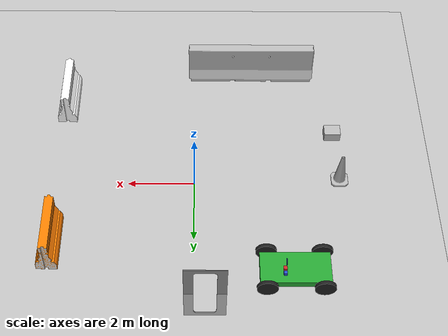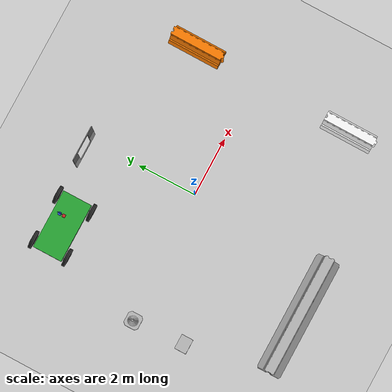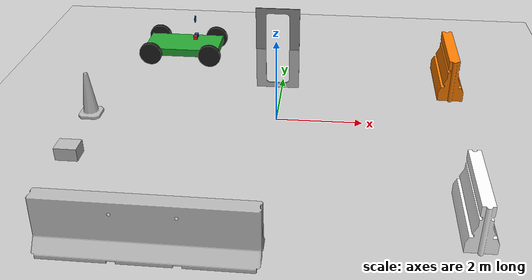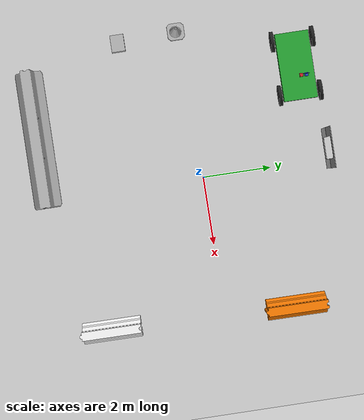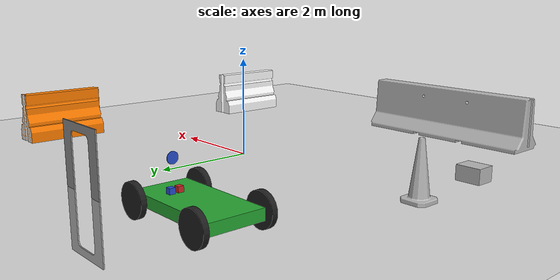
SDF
<sdf version="1.6">
 <world name="default">
  <light name="sun" type="directional">
   <pose>0 0 15 0 -0 0</pose>
   <diffuse>0.8 0.8 0.8 1</diffuse>
   <specular>0.2 0.2 0.2 1</specular>
   <attenuation>
    <range>1000</range>
    <constant>0.9</constant>
    <linear>0.01</linear>
    <quadratic>0.001</quadratic>
   </attenuation>
   <direction>-0.5 0.1 -0.9</direction>
  </light>
  <model name="ground_plane">
   <static>1</static>
   <link name="link">
    <collision name="collision">
     <geometry><plane><normal>0 0 1</normal><size>100 100</size></plane></geometry>
     <surface><friction><ode><mu>100</mu><mu2>50</mu2></ode></friction></surface>
    </collision>
    <visual name="visual">
     <transparency>1</transparency>
     <cast_shadows>0</cast_shadows>
     <geometry><plane><normal>0 0 1</normal><size>100 100</size></plane></geometry>
     <material>
      <script><uri>file://media/materials/scripts/gazebo.material</uri><name>Gazebo/Grey</name></script>
     </material>
    </visual>
   </link>
  </model>
  <gravity>0 0 -9.8</gravity>
  <magnetic_field>6e-06 2.3e-05 -4.2e-05</magnetic_field>
  <atmosphere type="adiabatic"/>
  <physics name="default_physics" default="0" type="ode">
   <max_step_size>0.001</max_step_size>
   <real_time_factor>1</real_time_factor>
   <real_time_update_rate>1000</real_time_update_rate>
  </physics>
  <scene><ambient>0.4 0.4 0.4 1</ambient><background>0.7 0.7 0.7 1</background><shadows>1</shadows></scene>
  <spherical_coordinates>
   <surface_model>EARTH_WGS84</surface_model>
   <latitude_deg>0</latitude_deg>
   <longitude_deg>0</longitude_deg>
   <elevation>0</elevation>
   <heading_deg>0</heading_deg>
  </spherical_coordinates>
  <model name="car">
   <link name="chassis">
    <pose>0 0 0.3 0 -0 0</pose>
    <collision name="collision"><geometry><box><size>2 1 0.2</size></box></geometry></collision>
    <visual name="visual">
     <geometry><box><size>2 1 0.2</size></box></geometry>
     <material>
      <script><uri>file://media/materials/scripts/gazebo.material</uri><name>Gazebo/Green</name></script>
     </material>
    </visual>
    <inertial>
     <inertia><ixx>1</ixx><ixy>0</ixy><ixz>0</ixz><iyy>1</iyy><iyz>0</iyz><izz>1</izz></inertia>
     <mass>1</mass>
    </inertial>
   </link>
   <link name="front_left_wheel">
    <pose>0.8 0.6 0.3 -0 1.5707 1.5707</pose>
    <collision name="collision">
     <geometry><cylinder><radius>0.3</radius><length>0.1</length></cylinder></geometry>
    </collision>
    <visual name="visual">
     <geometry><cylinder><radius>0.3</radius><length>0.1</length></cylinder></geometry>
     <material>
      <script><uri>file://media/materials/scripts/gazebo.material</uri><name>Gazebo/Black</name></script>
     </material>
    </visual>
    <inertial>
     <inertia><ixx>1</ixx><ixy>0</ixy><ixz>0</ixz><iyy>1</iyy><iyz>0</iyz><izz>1</izz></inertia>
     <mass>1</mass>
    </inertial>
   </link>
   <link name="front_right_wheel">
    <pose>0.8 -0.6 0.3 -0 1.5707 1.5707</pose>
    <collision name="collision">
     <geometry><cylinder><radius>0.3</radius><length>0.1</length></cylinder></geometry>
    </collision>
    <visual name="visual">
     <geometry><cylinder><radius>0.3</radius><length>0.1</length></cylinder></geometry>
     <material>
      <script><uri>file://media/materials/scripts/gazebo.material</uri><name>Gazebo/Black</name></script>
     </material>
    </visual>
    <inertial>
     <inertia><ixx>1</ixx><ixy>0</ixy><ixz>0</ixz><iyy>1</iyy><iyz>0</iyz><izz>1</izz></inertia>
     <mass>1</mass>
    </inertial>
   </link>
   <link name="back_right_wheel">
    <pose>-0.8 -0.6 0.3 -0 1.5707 1.5707</pose>
    <collision name="collision">
     <geometry><cylinder><radius>0.3</radius><length>0.1</length></cylinder></geometry>
    </collision>
    <visual name="visual">
     <geometry><cylinder><radius>0.3</radius><length>0.1</length></cylinder></geometry>
     <material>
      <script><uri>file://media/materials/scripts/gazebo.material</uri><name>Gazebo/Black</name></script>
     </material>
    </visual>
    <inertial>
     <inertia><ixx>1</ixx><ixy>0</ixy><ixz>0</ixz><iyy>1</iyy><iyz>0</iyz><izz>1</izz></inertia>
     <mass>1</mass>
    </inertial>
   </link>
   <link name="back_left_wheel">
    <pose>-0.8 0.6 0.3 -0 1.5707 1.5707</pose>
    <collision name="collision">
     <geometry><cylinder><radius>0.3</radius><length>0.1</length></cylinder></geometry>
    </collision>
    <visual name="visual">
     <geometry><cylinder><radius>0.3</radius><length>0.1</length></cylinder></geometry>
     <material>
      <script><uri>file://media/materials/scripts/gazebo.material</uri><name>Gazebo/Black</name></script>
     </material>
    </visual>
    <inertial>
     <inertia><ixx>1</ixx><ixy>0</ixy><ixz>0</ixz><iyy>1</iyy><iyz>0</iyz><izz>1</izz></inertia>
     <mass>1</mass>
    </inertial>
   </link>
   <link name="gas_pedal">
    <pose>0.3 0.1 0.5 0 -0 0</pose>
    <collision name="collision"><geometry><box><size>0.1 0.1 0.1</size></box></geometry></collision>
    <visual name="visual">
     <geometry><box><size>0.1 0.1 0.1</size></box></geometry>
     <material>
      <script><uri>file://media/materials/scripts/gazebo.material</uri><name>Gazebo/Red</name></script>
     </material>
    </visual>
    <inertial>
     <inertia><ixx>1</ixx><ixy>0</ixy><ixz>0</ixz><iyy>1</iyy><iyz>0</iyz><izz>1</izz></inertia>
     <mass>1</mass>
    </inertial>
   </link>
   <link name="brake_pedal">
    <pose>0.3 0.25 0.5 0 -0 0</pose>
    <collision name="collision"><geometry><box><size>0.1 0.1 0.1</size></box></geometry></collision>
    <visual name="visual">
     <geometry><box><size>0.1 0.1 0.1</size></box></geometry>
     <material>
      <script><uri>file://media/materials/scripts/gazebo.material</uri><name>Gazebo/Blue</name></script>
     </material>
    </visual>
    <inertial>
     <inertia><ixx>1</ixx><ixy>0</ixy><ixz>0</ixz><iyy>1</iyy><iyz>0</iyz><izz>1</izz></inertia>
     <mass>1</mass>
    </inertial>
   </link>
   <link name="steering_wheel">
    <pose>0.3 0.2 1 0 1.5707 0</pose>
    <collision name="collision">
     <geometry><cylinder><radius>0.1</radius><length>0.01</length></cylinder></geometry>
    </collision>
    <visual name="visual">
     <geometry><cylinder><radius>0.1</radius><length>0.01</length></cylinder></geometry>
     <material>
      <script><uri>file://media/materials/scripts/gazebo.material</uri><name>Gazebo/Blue</name></script>
     </material>
    </visual>
    <inertial>
     <inertia><ixx>1</ixx><ixy>0</ixy><ixz>0</ixz><iyy>1</iyy><iyz>0</iyz><izz>1</izz></inertia>
     <mass>1</mass>
    </inertial>
   </link>
   <joint name="gas_joint" type="prismatic">
    <parent>chassis</parent>
    <child>gas_pedal</child>
    <axis>
     <xyz>1 0 0</xyz>
     <limit><lower>0</lower><upper>0.2</upper></limit>
     <use_parent_model_frame>1</use_parent_model_frame>
     <dynamics><spring_reference>0</spring_reference><spring_stiffness>0</spring_stiffness></dynamics>
    </axis>
   </joint>
   <joint name="brake_joint" type="prismatic">
    <parent>chassis</parent>
    <child>brake_pedal</child>
    <axis>
     <xyz>1 0 0</xyz>
     <limit><lower>0</lower><upper>0.2</upper></limit>
     <use_parent_model_frame>1</use_parent_model_frame>
     <dynamics><spring_reference>0</spring_reference><spring_stiffness>0</spring_stiffness></dynamics>
    </axis>
   </joint>
   <joint name="steering_joint" type="revolute">
    <parent>chassis</parent>
    <child>steering_wheel</child>
    <axis>
     <xyz>1 0 0</xyz>
     <limit><lower>-7.853</lower><upper>7.853</upper></limit>
     <use_parent_model_frame>1</use_parent_model_frame>
     <dynamics><spring_reference>0</spring_reference><spring_stiffness>0</spring_stiffness></dynamics>
    </axis>
   </joint>
   <joint name="front_left_joint" type="revolute2">
    <parent>chassis</parent>
    <child>front_left_wheel</child>
    <axis>
     <xyz>0 0 1</xyz>
     <limit><lower>8.69312e-06</lower><upper>8.69312e-06</upper></limit>
     <use_parent_model_frame>1</use_parent_model_frame>
     <dynamics><spring_reference>0</spring_reference><spring_stiffness>0</spring_stiffness></dynamics>
    </axis>
    <axis2>
     <xyz>0 1 0</xyz>
     <use_parent_model_frame>1</use_parent_model_frame>
     <dynamics><spring_reference>0</spring_reference><spring_stiffness>0</spring_stiffness></dynamics>
    </axis2>
    <physics><ode><limit><cfm>0</cfm><erp>0.9</erp></limit></ode></physics>
   </joint>
   <joint name="front_right_joint" type="revolute2">
    <parent>chassis</parent>
    <child>front_right_wheel</child>
    <axis>
     <xyz>0 0 1</xyz>
     <limit><lower>8.69312e-06</lower><upper>8.69312e-06</upper></limit>
     <use_parent_model_frame>1</use_parent_model_frame>
     <dynamics><spring_reference>0</spring_reference><spring_stiffness>0</spring_stiffness></dynamics>
    </axis>
    <axis2>
     <xyz>0 1 0</xyz>
     <use_parent_model_frame>1</use_parent_model_frame>
     <dynamics><spring_reference>0</spring_reference><spring_stiffness>0</spring_stiffness></dynamics>
    </axis2>
    <physics><ode><limit><cfm>0</cfm><erp>0.9</erp></limit></ode></physics>
   </joint>
   <joint name="back_right_joint" type="revolute2">
    <parent>chassis</parent>
    <child>back_right_wheel</child>
    <axis>
     <xyz>0 0 1</xyz>
     <limit><lower>0</lower><upper>0</upper></limit>
     <use_parent_model_frame>1</use_parent_model_frame>
     <dynamics><spring_reference>0</spring_reference><spring_stiffness>0</spring_stiffness></dynamics>
    </axis>
    <axis2>
     <xyz>0 1 0</xyz>
     <use_parent_model_frame>1</use_parent_model_frame>
     <dynamics><spring_reference>0</spring_reference><spring_stiffness>0</spring_stiffness></dynamics>
    </axis2>
    <physics><ode><limit><cfm>0</cfm><erp>0.9</erp></limit></ode></physics>
   </joint>
   <joint name="back_left_joint" type="revolute2">
    <parent>chassis</parent>
    <child>back_left_wheel</child>
    <axis>
     <xyz>0 0 1</xyz>
     <limit><lower>0</lower><upper>0</upper></limit>
     <use_parent_model_frame>1</use_parent_model_frame>
     <dynamics><spring_reference>0</spring_reference><spring_stiffness>0</spring_stiffness></dynamics>
    </axis>
    <axis2>
     <xyz>0 1 0</xyz>
     <use_parent_model_frame>1</use_parent_model_frame>
     <dynamics><spring_reference>0</spring_reference><spring_stiffness>0</spring_stiffness></dynamics>
    </axis2>
    <physics><ode><limit><cfm>0</cfm><erp>0.9</erp></limit></ode></physics>
   </joint>
   <plugin name="vehicle" filename="libVehiclePlugin.so">
    <front_left>front_left_joint</front_left>
    <front_right>front_right_joint</front_right>
    <back_left>back_left_joint</back_left>
    <back_right>back_right_joint</back_right>
    <gas>gas_joint</gas>
    <brake>brake_joint</brake>
    <steering>steering_joint</steering>
    <front_power>10</front_power>
    <rear_power>10</rear_power>
    <tire_angle_range>0.5</tire_angle_range>
    <max_speed>10</max_speed>
    <aero_load>0.1</aero_load>
   </plugin>
   <pose>-2.84951 3.1815 -0.002615 -0.000273 0.000907 0.000132</pose>
  </model>
  <model name="Construction Cone">
   <link name="link">
    <collision name="collision">
     <geometry>
      <mesh><scale>10 10 10</scale><uri>model://construction_cone/meshes/construction_cone.dae</uri></mesh>
     </geometry>
    </collision>
    <visual name="visual">
     <geometry>
      <mesh><scale>10 10 10</scale><uri>model://construction_cone/meshes/construction_cone.dae</uri></mesh>
     </geometry>
    </visual>
    <inertial>
     <inertia><ixx>1</ixx><ixy>0</ixy><ixz>0</ixz><iyy>1</iyy><iyz>0</iyz><izz>1</izz></inertia>
     <mass>1</mass>
    </inertial>
   </link>
   <pose>-4.40266 -0.175448 -4e-06 4e-06 -1e-06 0</pose>
  </model>
  <model name="cardboard_box">
   <pose>-4.30137 -1.92748 0.149 0 -0 0</pose>
   <link name="link">
    <inertial>
     <mass>2</mass>
     <inertia>
      <ixx>0.0416667</ixx>
      <ixy>0</ixy>
      <ixz>0</ixz>
      <iyy>0.0566667</iyy>
      <iyz>0</iyz>
      <izz>0.0683333</izz>
     </inertia>
    </inertial>
    <collision name="collision">
     <geometry><box><size>0.5 0.4 0.3</size></box></geometry>
     <surface>
      <friction><ode><mu>1</mu><mu2>1</mu2></ode></friction>
      <contact><ode><kp>1e+07</kp><kd>1</kd><min_depth>0.001</min_depth><max_vel>0.1</max_vel></ode></contact>
     </surface>
    </collision>
    <visual name="visual">
     <pose>0 0 -0.15 0 -0 0</pose>
     <geometry>
      <mesh><uri>model://cardboard_box/meshes/cardboard_box.dae</uri><scale>1.25932 1.00745 0.755591</scale></mesh>
     </geometry>
    </visual>
   </link>
  </model>
  <model name="jersey_barrier">
   <static>1</static>
   <link name="link">
    <visual name="visual">
     <geometry><mesh><uri>model://jersey_barrier/meshes/jersey_barrier.dae</uri></mesh></geometry>
    </visual>
    <collision name="upright">
     <pose>0 0 0.5715 0 -0 0</pose>
     <geometry><box><size>4.06542 0.3063 1.143</size></box></geometry>
    </collision>
    <collision name="base">
     <pose>0 0 0.032258 0 -0 0</pose>
     <geometry><box><size>4.06542 0.8107 0.064516</size></box></geometry>
    </collision>
    <collision name="base2">
     <pose>0 0 0.1 0 -0 0</pose>
     <geometry><box><size>4.06542 0.65 0.1</size></box></geometry>
    </collision>
    <collision name="base3">
     <pose>0 0 0.2 0 -0 0</pose>
     <geometry><box><size>4.06542 0.5 0.1</size></box></geometry>
    </collision>
    <collision name="left-angle">
     <pose>0 -0.224 0.2401 0.9 -0 0</pose>
     <geometry><box><size>4.06542 0.5 0.064516</size></box></geometry>
    </collision>
    <collision name="right-angle">
     <pose>0 0.224 0.2401 -0.9 0 0</pose>
     <geometry><box><size>4.06542 0.5 0.064516</size></box></geometry>
    </collision>
   </link>
   <pose>-1.82146 -4.68097 0 0 -0 0</pose>
  </model>
  <model name="door_4x8">
   <static>1</static>
   <link name="door">
    <collision name="collision">
     <geometry><mesh><uri>model://drc_practice_door_4x8/meshes/4x8ftdoor.dae</uri></mesh></geometry>
    </collision>
    <visual name="visual">
     <geometry><mesh><uri>model://drc_practice_door_4x8/meshes/4x8ftdoor.dae</uri></mesh></geometry>
    </visual>
   </link>
   <pose>-0.322059 3.80082 0 0 -0 0</pose>
  </model>
  <model name="drc_practice_white_jersey_barrier">
   <static>1</static>
   <link name="link">
    <visual name="visual">
     <geometry>
      <mesh><uri>model://drc_practice_white_jersey_barrier/meshes/jersey_barrier.dae</uri></mesh>
     </geometry>
    </visual>
    <collision name="collision">
     <geometry>
      <mesh><uri>model://drc_practice_white_jersey_barrier/meshes/jersey_barrier.dae</uri></mesh>
     </geometry>
    </collision>
   </link>
   <pose>4.05136 -3.34001 0 0 -0 0</pose>
  </model>
  <model name="drc_practice_organge_jersey_barrier">
   <static>1</static>
   <link name="link">
    <visual name="visual">
     <geometry>
      <mesh><uri>model://drc_practice_orange_jersey_barrier/meshes/jersey_barrier.dae</uri></mesh>
     </geometry>
    </visual>
    <collision name="collision">
     <geometry>
      <mesh><uri>model://drc_practice_orange_jersey_barrier/meshes/jersey_barrier.dae</uri></mesh>
     </geometry>
    </collision>
   </link>
   <pose>4.16265 2.14731 0 0 -0 0</pose>
  </model>
 </world>
</sdf>
